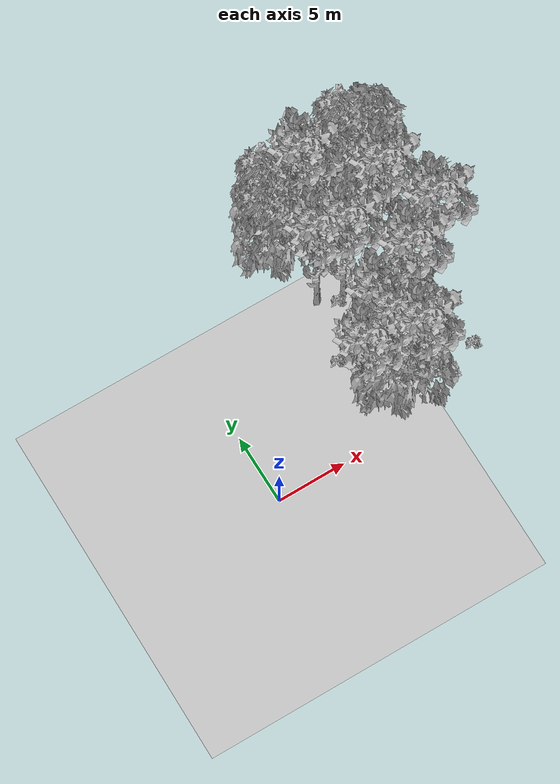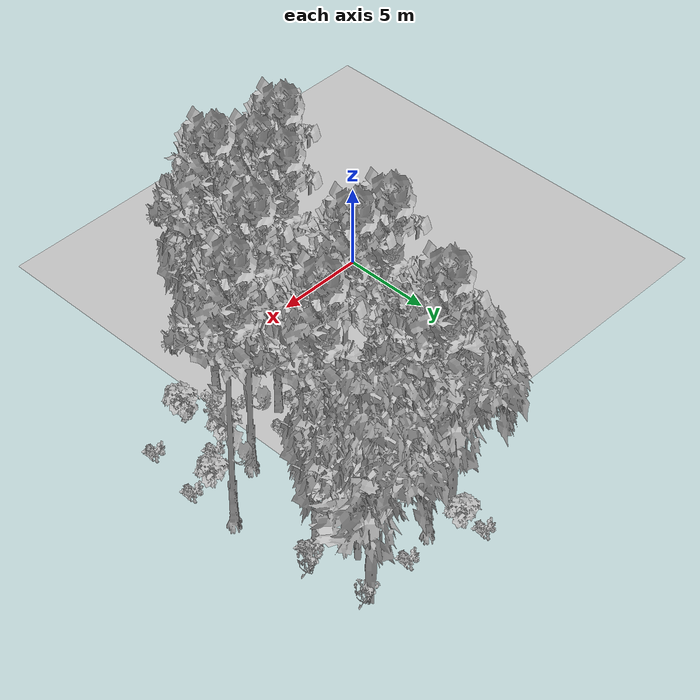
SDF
<sdf version="1.7">
 <world name="default">
  <model name="ground_plane">
   <static>1</static>
   <link name="link">
    <collision name="collision">
     <pose>-50 0 0 0 -0 0</pose>
     <geometry><plane><normal>0 0 1</normal><size>80 80</size></plane></geometry>
     <surface><contact><ode><min_depth>0.01</min_depth><max_vel>0</max_vel></ode></contact></surface>
    </collision>
    <visual name="grass">
     <cast_shadows>0</cast_shadows>
     <geometry>
      <mesh>
       <scale>0.46714285714285714 0.46714285714285714 0.1</scale>
       <uri>file://grass_plane/meshes/grass_plane.dae</uri>
      </mesh>
     </geometry>
    </visual>
   </link>
  </model>
  <model name="Tree 51">
   <static>1</static>
   <pose>10.570437605182477 3.384716484776355 0 1.57079 -0 0</pose>
   <link name="link">
    <collision name="collision">
     <geometry><mesh><scale>3.5 5 3.5</scale><uri>model://tree_9/meshes/tree_9.obj</uri></mesh></geometry>
    </collision>
    <visual name="visual">
     <geometry><mesh><scale>3.5 5 3.5</scale><uri>model://tree_9/meshes/tree_9.obj</uri></mesh></geometry>
    </visual>
   </link>
  </model>
  <model name="Tree 137">
   <static>1</static>
   <pose>10.203276637808173 1.6049418052419284 0 1.57079 -0 0</pose>
   <link name="link">
    <collision name="collision">
     <geometry><mesh><scale>3.5 5 3.5</scale><uri>model://tree_2/meshes/tree_2.obj</uri></mesh></geometry>
    </collision>
    <visual name="visual">
     <geometry><mesh><scale>3.5 5 3.5</scale><uri>model://tree_2/meshes/tree_2.obj</uri></mesh></geometry>
    </visual>
   </link>
  </model>
  <model name="Tree 177">
   <static>1</static>
   <pose>10.473343241669845 5.031324254690958 0 1.57079 -0 0</pose>
   <link name="link">
    <collision name="collision">
     <geometry><mesh><scale>3.5 5 3.5</scale><uri>model://tree_9/meshes/tree_9.obj</uri></mesh></geometry>
    </collision>
    <visual name="visual">
     <geometry><mesh><scale>3.5 5 3.5</scale><uri>model://tree_9/meshes/tree_9.obj</uri></mesh></geometry>
    </visual>
   </link>
  </model>
  <model name="Tree 201">
   <static>1</static>
   <pose>8.07967403711288 2.5571829059587188 0 1.57079 -0 0</pose>
   <link name="link">
    <collision name="collision">
     <geometry><mesh><scale>3.5 5 3.5</scale><uri>model://tree_9/meshes/tree_9.obj</uri></mesh></geometry>
    </collision>
    <visual name="visual">
     <geometry><mesh><scale>3.5 5 3.5</scale><uri>model://tree_9/meshes/tree_9.obj</uri></mesh></geometry>
    </visual>
   </link>
  </model>
  <model name="Tree 205">
   <static>1</static>
   <pose>15.252356261128604 12.360051976595216 0 1.57079 -0 0</pose>
   <link name="link">
    <collision name="collision">
     <geometry><mesh><scale>3.5 5 3.5</scale><uri>model://tree_9/meshes/tree_9.obj</uri></mesh></geometry>
    </collision>
    <visual name="visual">
     <geometry><mesh><scale>3.5 5 3.5</scale><uri>model://tree_9/meshes/tree_9.obj</uri></mesh></geometry>
    </visual>
   </link>
  </model>
  <model name="Tree 294">
   <static>1</static>
   <pose>13.940287766195091 6.7258346214058236 0 1.57079 -0 0</pose>
   <link name="link">
    <collision name="collision">
     <geometry><mesh><scale>3.5 5 3.5</scale><uri>model://tree_9/meshes/tree_9.obj</uri></mesh></geometry>
    </collision>
    <visual name="visual">
     <geometry><mesh><scale>3.5 5 3.5</scale><uri>model://tree_9/meshes/tree_9.obj</uri></mesh></geometry>
    </visual>
   </link>
  </model>
  <model name="Tree 315">
   <static>1</static>
   <pose>17.01106904469944 8.703359438746148 0 1.57079 -0 0</pose>
   <link name="link">
    <collision name="collision">
     <geometry><mesh><scale>3.5 5 3.5</scale><uri>model://tree_9/meshes/tree_9.obj</uri></mesh></geometry>
    </collision>
    <visual name="visual">
     <geometry><mesh><scale>3.5 5 3.5</scale><uri>model://tree_9/meshes/tree_9.obj</uri></mesh></geometry>
    </visual>
   </link>
  </model>
  <model name="Tree 338">
   <static>1</static>
   <pose>9.272851368925622 14.452390777398023 0 1.57079 -0 0</pose>
   <link name="link">
    <collision name="collision">
     <geometry><mesh><scale>3.5 5 3.5</scale><uri>model://tree_2/meshes/tree_2.obj</uri></mesh></geometry>
    </collision>
    <visual name="visual">
     <geometry><mesh><scale>3.5 5 3.5</scale><uri>model://tree_2/meshes/tree_2.obj</uri></mesh></geometry>
    </visual>
   </link>
  </model>
  <model name="Tree 343">
   <static>1</static>
   <pose>9.623972366390852 15.739149489736832 0 1.57079 -0 0</pose>
   <link name="link">
    <collision name="collision">
     <geometry><mesh><scale>3.5 5 3.5</scale><uri>model://tree_2/meshes/tree_2.obj</uri></mesh></geometry>
    </collision>
    <visual name="visual">
     <geometry><mesh><scale>3.5 5 3.5</scale><uri>model://tree_2/meshes/tree_2.obj</uri></mesh></geometry>
    </visual>
   </link>
  </model>
  <model name="Tree 379">
   <static>1</static>
   <pose>14.58911330386561 14.47338116045573 0 1.57079 -0 0</pose>
   <link name="link">
    <collision name="collision">
     <geometry><mesh><scale>3.5 5 3.5</scale><uri>model://tree_2/meshes/tree_2.obj</uri></mesh></geometry>
    </collision>
    <visual name="visual">
     <geometry><mesh><scale>3.5 5 3.5</scale><uri>model://tree_2/meshes/tree_2.obj</uri></mesh></geometry>
    </visual>
   </link>
  </model>
  <model name="Tree 409">
   <static>1</static>
   <pose>11.209521355749565 15.718515381314234 0 1.57079 -0 0</pose>
   <link name="link">
    <collision name="collision">
     <geometry><mesh><scale>3.5 5 3.5</scale><uri>model://tree_9/meshes/tree_9.obj</uri></mesh></geometry>
    </collision>
    <visual name="visual">
     <geometry><mesh><scale>3.5 5 3.5</scale><uri>model://tree_9/meshes/tree_9.obj</uri></mesh></geometry>
    </visual>
   </link>
  </model>
  <model name="Tree 413">
   <static>1</static>
   <pose>11.158623440992855 10.214475985195861 0 1.57079 -0 0</pose>
   <link name="link">
    <collision name="collision">
     <geometry><mesh><scale>3.5 5 3.5</scale><uri>model://tree_9/meshes/tree_9.obj</uri></mesh></geometry>
    </collision>
    <visual name="visual">
     <geometry><mesh><scale>3.5 5 3.5</scale><uri>model://tree_9/meshes/tree_9.obj</uri></mesh></geometry>
    </visual>
   </link>
  </model>
  <model name="Tree 421">
   <static>1</static>
   <pose>11.768167812460923 1.891447225185999 0 1.57079 -0 0</pose>
   <link name="link">
    <collision name="collision">
     <geometry><mesh><scale>3.5 5 3.5</scale><uri>model://tree_9/meshes/tree_9.obj</uri></mesh></geometry>
    </collision>
    <visual name="visual">
     <geometry><mesh><scale>3.5 5 3.5</scale><uri>model://tree_9/meshes/tree_9.obj</uri></mesh></geometry>
    </visual>
   </link>
  </model>
  <model name="Tree 497">
   <static>1</static>
   <pose>16.033050641106314 16.669786742735667 0 1.57079 -0 0</pose>
   <link name="link">
    <collision name="collision">
     <geometry><mesh><scale>3.5 5 3.5</scale><uri>model://tree_2/meshes/tree_2.obj</uri></mesh></geometry>
    </collision>
    <visual name="visual">
     <geometry><mesh><scale>3.5 5 3.5</scale><uri>model://tree_2/meshes/tree_2.obj</uri></mesh></geometry>
    </visual>
   </link>
  </model>
  <model name="Tree 556">
   <static>1</static>
   <pose>9.36216038690641 10.629429543153215 0 1.57079 -0 0</pose>
   <link name="link">
    <collision name="collision">
     <geometry><mesh><scale>3.5 5 3.5</scale><uri>model://tree_9/meshes/tree_9.obj</uri></mesh></geometry>
    </collision>
    <visual name="visual">
     <geometry><mesh><scale>3.5 5 3.5</scale><uri>model://tree_9/meshes/tree_9.obj</uri></mesh></geometry>
    </visual>
   </link>
  </model>
  <model name="Tree 608">
   <static>1</static>
   <pose>11.485586088825073 4.073380088326758 0 1.57079 -0 0</pose>
   <link name="link">
    <collision name="collision">
     <geometry><mesh><scale>3.5 5 3.5</scale><uri>model://tree_2/meshes/tree_2.obj</uri></mesh></geometry>
    </collision>
    <visual name="visual">
     <geometry><mesh><scale>3.5 5 3.5</scale><uri>model://tree_2/meshes/tree_2.obj</uri></mesh></geometry>
    </visual>
   </link>
  </model>
  <model name="Tree 633">
   <static>1</static>
   <pose>8.465277582806998 13.613153981246114 0 1.57079 -0 0</pose>
   <link name="link">
    <collision name="collision">
     <geometry><mesh><scale>3.5 5 3.5</scale><uri>model://tree_2/meshes/tree_2.obj</uri></mesh></geometry>
    </collision>
    <visual name="visual">
     <geometry><mesh><scale>3.5 5 3.5</scale><uri>model://tree_2/meshes/tree_2.obj</uri></mesh></geometry>
    </visual>
   </link>
  </model>
  <model name="Bush 58">
   <static>1</static>
   <pose>14.616566547054845 4.7714039239641295 0 1.57079 -0 0</pose>
   <link name="link">
    <collision name="collision">
     <geometry><mesh><scale>2 2 2</scale><uri>model://bush_2/meshes/bush_2.obj</uri></mesh></geometry>
     <surface><contact><collide_without_contact>false</collide_without_contact></contact></surface>
    </collision>
    <visual name="visual">
     <geometry><mesh><scale>2 2 2</scale><uri>model://bush_2/meshes/bush_2.obj</uri></mesh></geometry>
    </visual>
   </link>
  </model>
  <model name="Bush 161">
   <static>1</static>
   <pose>10.870898017353632 13.929994964327165 0 1.57079 -0 0</pose>
   <link name="link">
    <collision name="collision">
     <geometry><mesh><scale>2 2 2</scale><uri>model://bush_5/meshes/bush_5.obj</uri></mesh></geometry>
     <surface><contact><collide_without_contact>false</collide_without_contact></contact></surface>
    </collision>
    <visual name="visual">
     <geometry><mesh><scale>2 2 2</scale><uri>model://bush_5/meshes/bush_5.obj</uri></mesh></geometry>
    </visual>
   </link>
  </model>
  <model name="Bush 169">
   <static>1</static>
   <pose>9.785039091185482 16.361197566095733 0 1.57079 -0 0</pose>
   <link name="link">
    <collision name="collision">
     <geometry><mesh><scale>2 2 2</scale><uri>model://bush_1/meshes/bush_1.obj</uri></mesh></geometry>
     <surface><contact><collide_without_contact>false</collide_without_contact></contact></surface>
    </collision>
    <visual name="visual">
     <geometry><mesh><scale>2 2 2</scale><uri>model://bush_1/meshes/bush_1.obj</uri></mesh></geometry>
    </visual>
   </link>
  </model>
  <model name="Bush 171">
   <static>1</static>
   <pose>14.308791729648114 2.4214241500380496 0 1.57079 -0 0</pose>
   <link name="link">
    <collision name="collision">
     <geometry><mesh><scale>2 2 2</scale><uri>model://bush_0/meshes/bush_0.obj</uri></mesh></geometry>
     <surface><contact><collide_without_contact>false</collide_without_contact></contact></surface>
    </collision>
    <visual name="visual">
     <geometry><mesh><scale>2 2 2</scale><uri>model://bush_0/meshes/bush_0.obj</uri></mesh></geometry>
    </visual>
   </link>
  </model>
  <model name="Bush 179">
   <static>1</static>
   <pose>16.3653191207871 16.575104692909825 0 1.57079 -0 0</pose>
   <link name="link">
    <collision name="collision">
     <geometry><mesh><scale>2 2 2</scale><uri>model://bush_4/meshes/bush_4.obj</uri></mesh></geometry>
     <surface><contact><collide_without_contact>false</collide_without_contact></contact></surface>
    </collision>
    <visual name="visual">
     <geometry><mesh><scale>2 2 2</scale><uri>model://bush_4/meshes/bush_4.obj</uri></mesh></geometry>
    </visual>
   </link>
  </model>
  <model name="Bush 194">
   <static>1</static>
   <pose>8.34943155602955 6.265729134015189 0 1.57079 -0 0</pose>
   <link name="link">
    <collision name="collision">
     <geometry><mesh><scale>2 2 2</scale><uri>model://bush_2/meshes/bush_2.obj</uri></mesh></geometry>
     <surface><contact><collide_without_contact>false</collide_without_contact></contact></surface>
    </collision>
    <visual name="visual">
     <geometry><mesh><scale>2 2 2</scale><uri>model://bush_2/meshes/bush_2.obj</uri></mesh></geometry>
    </visual>
   </link>
  </model>
  <model name="Bush 209">
   <static>1</static>
   <pose>10.604311274800551 9.894185103915014 0 1.57079 -0 0</pose>
   <link name="link">
    <collision name="collision">
     <geometry><mesh><scale>2 2 2</scale><uri>model://bush_2/meshes/bush_2.obj</uri></mesh></geometry>
     <surface><contact><collide_without_contact>false</collide_without_contact></contact></surface>
    </collision>
    <visual name="visual">
     <geometry><mesh><scale>2 2 2</scale><uri>model://bush_2/meshes/bush_2.obj</uri></mesh></geometry>
    </visual>
   </link>
  </model>
  <model name="Bush 231">
   <static>1</static>
   <pose>13.660624149640377 4.269902565120816 0 1.57079 -0 0</pose>
   <link name="link">
    <collision name="collision">
     <geometry><mesh><scale>2 2 2</scale><uri>model://bush_1/meshes/bush_1.obj</uri></mesh></geometry>
     <surface><contact><collide_without_contact>false</collide_without_contact></contact></surface>
    </collision>
    <visual name="visual">
     <geometry><mesh><scale>2 2 2</scale><uri>model://bush_1/meshes/bush_1.obj</uri></mesh></geometry>
    </visual>
   </link>
  </model>
  <model name="Bush 244">
   <static>1</static>
   <pose>17.194688936418615 6.0058599680561855 0 1.57079 -0 0</pose>
   <link name="link">
    <collision name="collision">
     <geometry><mesh><scale>2 2 2</scale><uri>model://bush_2/meshes/bush_2.obj</uri></mesh></geometry>
     <surface><contact><collide_without_contact>false</collide_without_contact></contact></surface>
    </collision>
    <visual name="visual">
     <geometry><mesh><scale>2 2 2</scale><uri>model://bush_2/meshes/bush_2.obj</uri></mesh></geometry>
    </visual>
   </link>
  </model>
  <model name="Bush 276">
   <static>1</static>
   <pose>13.703236238176736 13.394917438958167 0 1.57079 -0 0</pose>
   <link name="link">
    <collision name="collision">
     <geometry><mesh><scale>2 2 2</scale><uri>model://bush_2/meshes/bush_2.obj</uri></mesh></geometry>
     <surface><contact><collide_without_contact>false</collide_without_contact></contact></surface>
    </collision>
    <visual name="visual">
     <geometry><mesh><scale>2 2 2</scale><uri>model://bush_2/meshes/bush_2.obj</uri></mesh></geometry>
    </visual>
   </link>
  </model>
  <model name="Bush 306">
   <static>1</static>
   <pose>11.780803865494576 3.271478434053421 0 1.57079 -0 0</pose>
   <link name="link">
    <collision name="collision">
     <geometry><mesh><scale>2 2 2</scale><uri>model://bush_2/meshes/bush_2.obj</uri></mesh></geometry>
     <surface><contact><collide_without_contact>false</collide_without_contact></contact></surface>
    </collision>
    <visual name="visual">
     <geometry><mesh><scale>2 2 2</scale><uri>model://bush_2/meshes/bush_2.obj</uri></mesh></geometry>
    </visual>
   </link>
  </model>
  <model name="Bush 331">
   <static>1</static>
   <pose>13.341981458909565 10.481645661947937 0 1.57079 -0 0</pose>
   <link name="link">
    <collision name="collision">
     <geometry><mesh><scale>2 2 2</scale><uri>model://bush_2/meshes/bush_2.obj</uri></mesh></geometry>
     <surface><contact><collide_without_contact>false</collide_without_contact></contact></surface>
    </collision>
    <visual name="visual">
     <geometry><mesh><scale>2 2 2</scale><uri>model://bush_2/meshes/bush_2.obj</uri></mesh></geometry>
    </visual>
   </link>
  </model>
  <model name="Bush 387">
   <static>1</static>
   <pose>11.295783827724485 12.138331100625521 0 1.57079 -0 0</pose>
   <link name="link">
    <collision name="collision">
     <geometry><mesh><scale>2 2 2</scale><uri>model://bush_2/meshes/bush_2.obj</uri></mesh></geometry>
     <surface><contact><collide_without_contact>false</collide_without_contact></contact></surface>
    </collision>
    <visual name="visual">
     <geometry><mesh><scale>2 2 2</scale><uri>model://bush_2/meshes/bush_2.obj</uri></mesh></geometry>
    </visual>
   </link>
  </model>
  <model name="Bush 396">
   <static>1</static>
   <pose>9.271045548612207 17.557410759337643 0 1.57079 -0 0</pose>
   <link name="link">
    <collision name="collision">
     <geometry><mesh><scale>2 2 2</scale><uri>model://bush_2/meshes/bush_2.obj</uri></mesh></geometry>
     <surface><contact><collide_without_contact>false</collide_without_contact></contact></surface>
    </collision>
    <visual name="visual">
     <geometry><mesh><scale>2 2 2</scale><uri>model://bush_2/meshes/bush_2.obj</uri></mesh></geometry>
    </visual>
   </link>
  </model>
  <model name="Bush 407">
   <static>1</static>
   <pose>13.257934757537662 3.282242539321942 0 1.57079 -0 0</pose>
   <link name="link">
    <collision name="collision">
     <geometry><mesh><scale>2 2 2</scale><uri>model://bush_5/meshes/bush_5.obj</uri></mesh></geometry>
     <surface><contact><collide_without_contact>false</collide_without_contact></contact></surface>
    </collision>
    <visual name="visual">
     <geometry><mesh><scale>2 2 2</scale><uri>model://bush_5/meshes/bush_5.obj</uri></mesh></geometry>
    </visual>
   </link>
  </model>
  <model name="Bush 428">
   <static>1</static>
   <pose>9.263111499327813 2.373080492724384 0 1.57079 -0 0</pose>
   <link name="link">
    <collision name="collision">
     <geometry><mesh><scale>2 2 2</scale><uri>model://bush_0/meshes/bush_0.obj</uri></mesh></geometry>
     <surface><contact><collide_without_contact>false</collide_without_contact></contact></surface>
    </collision>
    <visual name="visual">
     <geometry><mesh><scale>2 2 2</scale><uri>model://bush_0/meshes/bush_0.obj</uri></mesh></geometry>
    </visual>
   </link>
  </model>
  <model name="Bush 433">
   <static>1</static>
   <pose>11.207062212166825 5.980410266315211 0 1.57079 -0 0</pose>
   <link name="link">
    <collision name="collision">
     <geometry><mesh><scale>2 2 2</scale><uri>model://bush_2/meshes/bush_2.obj</uri></mesh></geometry>
     <surface><contact><collide_without_contact>false</collide_without_contact></contact></surface>
    </collision>
    <visual name="visual">
     <geometry><mesh><scale>2 2 2</scale><uri>model://bush_2/meshes/bush_2.obj</uri></mesh></geometry>
    </visual>
   </link>
  </model>
  <model name="Bush 473">
   <static>1</static>
   <pose>9.426881962516987 4.987816385107394 0 1.57079 -0 0</pose>
   <link name="link">
    <collision name="collision">
     <geometry><mesh><scale>2 2 2</scale><uri>model://bush_2/meshes/bush_2.obj</uri></mesh></geometry>
     <surface><contact><collide_without_contact>false</collide_without_contact></contact></surface>
    </collision>
    <visual name="visual">
     <geometry><mesh><scale>2 2 2</scale><uri>model://bush_2/meshes/bush_2.obj</uri></mesh></geometry>
    </visual>
   </link>
  </model>
  <model name="Bush 481">
   <static>1</static>
   <pose>16.13584051452539 6.1071815741996005 0 1.57079 -0 0</pose>
   <link name="link">
    <collision name="collision">
     <geometry><mesh><scale>2 2 2</scale><uri>model://bush_1/meshes/bush_1.obj</uri></mesh></geometry>
     <surface><contact><collide_without_contact>false</collide_without_contact></contact></surface>
    </collision>
    <visual name="visual">
     <geometry><mesh><scale>2 2 2</scale><uri>model://bush_1/meshes/bush_1.obj</uri></mesh></geometry>
    </visual>
   </link>
  </model>
  <model name="Bush 506">
   <static>1</static>
   <pose>15.904130008008273 12.417918739309016 0 1.57079 -0 0</pose>
   <link name="link">
    <collision name="collision">
     <geometry><mesh><scale>2 2 2</scale><uri>model://bush_2/meshes/bush_2.obj</uri></mesh></geometry>
     <surface><contact><collide_without_contact>false</collide_without_contact></contact></surface>
    </collision>
    <visual name="visual">
     <geometry><mesh><scale>2 2 2</scale><uri>model://bush_2/meshes/bush_2.obj</uri></mesh></geometry>
    </visual>
   </link>
  </model>
  <model name="Bush 507">
   <static>1</static>
   <pose>12.95578303771245 13.105702419869445 0 1.57079 -0 0</pose>
   <link name="link">
    <collision name="collision">
     <geometry><mesh><scale>2 2 2</scale><uri>model://bush_4/meshes/bush_4.obj</uri></mesh></geometry>
     <surface><contact><collide_without_contact>false</collide_without_contact></contact></surface>
    </collision>
    <visual name="visual">
     <geometry><mesh><scale>2 2 2</scale><uri>model://bush_4/meshes/bush_4.obj</uri></mesh></geometry>
    </visual>
   </link>
  </model>
  <model name="Bush 511">
   <static>1</static>
   <pose>13.969040403380134 1.4383688224710056 0 1.57079 -0 0</pose>
   <link name="link">
    <collision name="collision">
     <geometry><mesh><scale>2 2 2</scale><uri>model://bush_1/meshes/bush_1.obj</uri></mesh></geometry>
     <surface><contact><collide_without_contact>false</collide_without_contact></contact></surface>
    </collision>
    <visual name="visual">
     <geometry><mesh><scale>2 2 2</scale><uri>model://bush_1/meshes/bush_1.obj</uri></mesh></geometry>
    </visual>
   </link>
  </model>
  <model name="Bush 539">
   <static>1</static>
   <pose>10.678933752045879 8.327759141171065 0 1.57079 -0 0</pose>
   <link name="link">
    <collision name="collision">
     <geometry><mesh><scale>2 2 2</scale><uri>model://bush_2/meshes/bush_2.obj</uri></mesh></geometry>
     <surface><contact><collide_without_contact>false</collide_without_contact></contact></surface>
    </collision>
    <visual name="visual">
     <geometry><mesh><scale>2 2 2</scale><uri>model://bush_2/meshes/bush_2.obj</uri></mesh></geometry>
    </visual>
   </link>
  </model>
  <model name="Bush 559">
   <static>1</static>
   <pose>16.691199427908323 2.751197633869353 0 1.57079 -0 0</pose>
   <link name="link">
    <collision name="collision">
     <geometry><mesh><scale>2 2 2</scale><uri>model://bush_2/meshes/bush_2.obj</uri></mesh></geometry>
     <surface><contact><collide_without_contact>false</collide_without_contact></contact></surface>
    </collision>
    <visual name="visual">
     <geometry><mesh><scale>2 2 2</scale><uri>model://bush_2/meshes/bush_2.obj</uri></mesh></geometry>
    </visual>
   </link>
  </model>
  <model name="Bush 567">
   <static>1</static>
   <pose>13.110184900995648 16.22903903775147 0 1.57079 -0 0</pose>
   <link name="link">
    <collision name="collision">
     <geometry><mesh><scale>2 2 2</scale><uri>model://bush_2/meshes/bush_2.obj</uri></mesh></geometry>
     <surface><contact><collide_without_contact>false</collide_without_contact></contact></surface>
    </collision>
    <visual name="visual">
     <geometry><mesh><scale>2 2 2</scale><uri>model://bush_2/meshes/bush_2.obj</uri></mesh></geometry>
    </visual>
   </link>
  </model>
  <model name="Bush 592">
   <static>1</static>
   <pose>15.698142701207814 12.61662847450004 0 1.57079 -0 0</pose>
   <link name="link">
    <collision name="collision">
     <geometry><mesh><scale>2 2 2</scale><uri>model://bush_2/meshes/bush_2.obj</uri></mesh></geometry>
     <surface><contact><collide_without_contact>false</collide_without_contact></contact></surface>
    </collision>
    <visual name="visual">
     <geometry><mesh><scale>2 2 2</scale><uri>model://bush_2/meshes/bush_2.obj</uri></mesh></geometry>
    </visual>
   </link>
  </model>
  <model name="Bush 593">
   <static>1</static>
   <pose>16.88767046648951 13.458748374029916 0 1.57079 -0 0</pose>
   <link name="link">
    <collision name="collision">
     <geometry><mesh><scale>2 2 2</scale><uri>model://bush_4/meshes/bush_4.obj</uri></mesh></geometry>
     <surface><contact><collide_without_contact>false</collide_without_contact></contact></surface>
    </collision>
    <visual name="visual">
     <geometry><mesh><scale>2 2 2</scale><uri>model://bush_4/meshes/bush_4.obj</uri></mesh></geometry>
    </visual>
   </link>
  </model>
  <model name="Bush 605">
   <static>1</static>
   <pose>8.397832261132457 3.082976228032237 0 1.57079 -0 0</pose>
   <link name="link">
    <collision name="collision">
     <geometry><mesh><scale>2 2 2</scale><uri>model://bush_2/meshes/bush_2.obj</uri></mesh></geometry>
     <surface><contact><collide_without_contact>false</collide_without_contact></contact></surface>
    </collision>
    <visual name="visual">
     <geometry><mesh><scale>2 2 2</scale><uri>model://bush_2/meshes/bush_2.obj</uri></mesh></geometry>
    </visual>
   </link>
  </model>
 </world>
</sdf>
